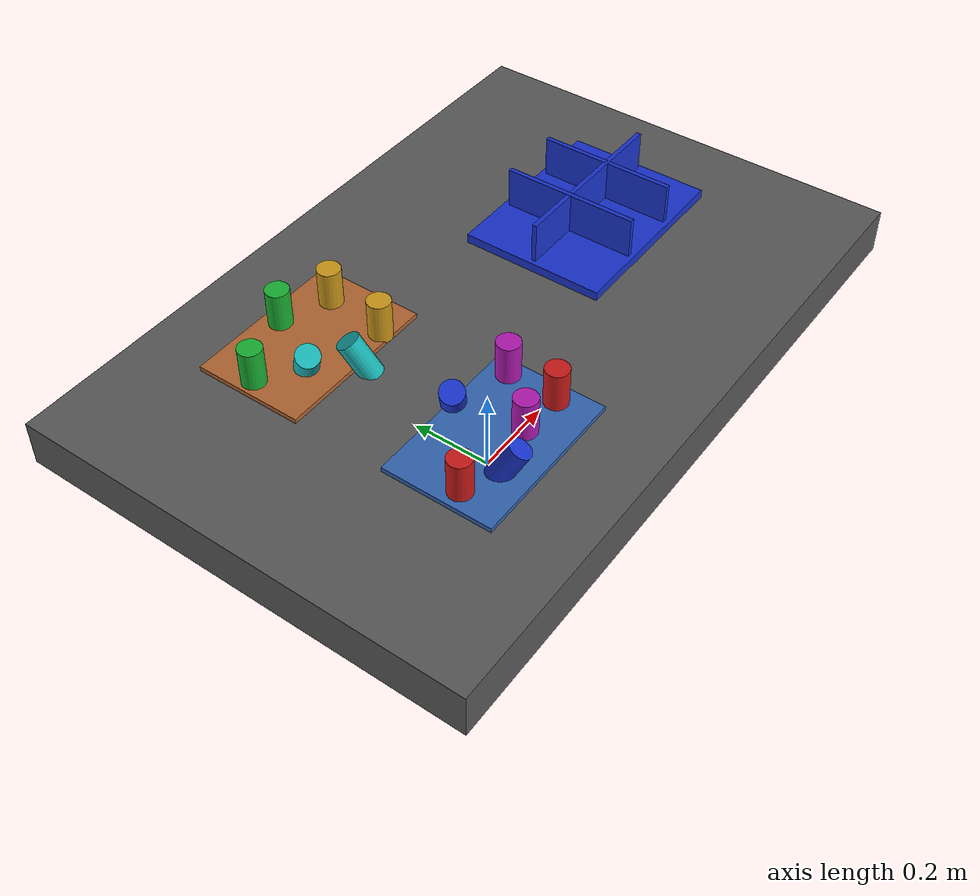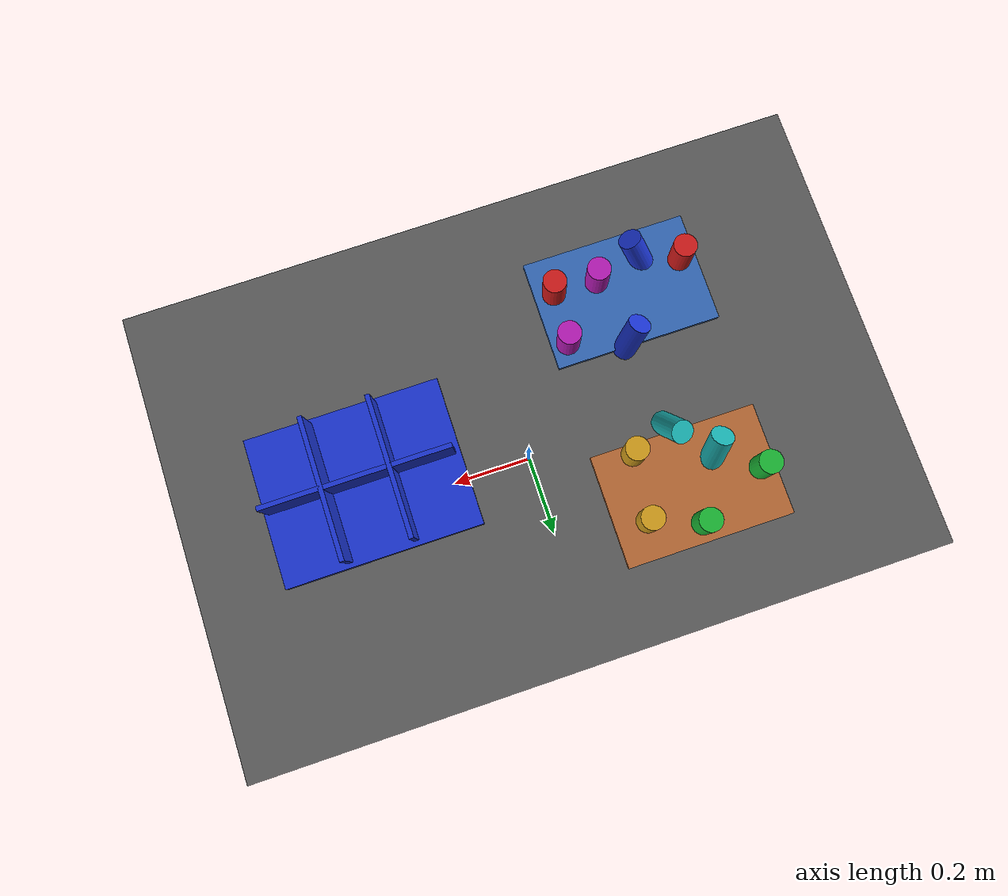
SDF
<?xml version="1.0" ?>
<sdf version="1.9">
  <!-- Standalone M1B scene.  The controller-backed Panda is spawned by the
       existing launch path; this file never alters the frozen M1A cube world. -->
  <world name="industrial_cylinder_v1">
    <physics name="bullet" type="bullet"><max_step_size>0.001</max_step_size><real_time_factor>1.0</real_time_factor></physics>
    <plugin name="gz::sim::systems::Physics" filename="gz-sim-physics-system"><engine><filename>gz-physics-bullet-featherstone-plugin</filename></engine></plugin>
    <plugin name="gz::sim::systems::UserCommands" filename="gz-sim-user-commands-system"/>
    <plugin name="gz::sim::systems::SceneBroadcaster" filename="gz-sim-scene-broadcaster-system"/>
    <plugin name="gz::sim::systems::Sensors" filename="gz-sim-sensors-system"><render_engine>ogre2</render_engine></plugin>
    <gravity>0 0 -9.81</gravity>
    <light type="directional" name="industrial_light"><pose>0 0 5 0 0 0</pose><direction>-0.3 0.2 -0.9</direction><diffuse>0.9 0.9 0.9 1</diffuse></light>
    <model name="industrial_work_table"><static>true</static><link name="link"><pose>0 0 0.4 0 0 0</pose><collision name="collision"><geometry><box><size>1.5 1.0 0.1</size></box></geometry></collision><visual name="visual"><geometry><box><size>1.5 1.0 0.1</size></box></geometry><material><diffuse>0.35 0.35 0.35 1</diffuse></material></visual></link></model>
    <model name="camera_fixture"><static>true</static><link name="camera_rgbd"><pose>-0.80 -0.80 1.40 0 0.77 0.93</pose><sensor name="front_rgbd" type="rgbd_camera"><always_on>1</always_on><update_rate>15</update_rate><topic>/xh/camera/rgbd</topic><camera><horizontal_fov>1.047</horizontal_fov><image><width>640</width><height>480</height><format>R8G8B8</format></image><clip><near>0.1</near><far>4.0</far></clip></camera></sensor></link></model>
    <model name="incoming_zone_a"><static>true</static><link name="link"><pose>-0.28 -0.22 0.455 0 0 0</pose><visual name="visual"><geometry><box><size>0.36 0.24 0.01</size></box></geometry><material><diffuse>0.2 0.4 0.7 1</diffuse></material></visual></link></model>
    <model name="incoming_zone_b"><static>true</static><link name="link"><pose>-0.28 0.22 0.455 0 0 0</pose><visual name="visual"><geometry><box><size>0.36 0.24 0.01</size></box></geometry><material><diffuse>0.7 0.4 0.2 1</diffuse></material></visual></link></model>
    <!-- M1B_RANDOM_PARTS_BEGIN -->
    <model name="cylinder_01"><pose>-0.4227 -0.2466 0.5000 0.0000 0.0000 2.6062</pose><link name="link"><inertial><mass>0.06</mass></inertial><collision name="collision"><geometry><cylinder><radius>0.025</radius><length>0.09</length></cylinder></geometry></collision><visual name="visual"><geometry><cylinder><radius>0.025</radius><length>0.09</length></cylinder></geometry><material><diffuse>0.800 0.100 0.100 1</diffuse><specular>0.15 0.15 0.15 1</specular></material></visual></link></model>
    <model name="cylinder_02"><pose>-0.4284 0.2300 0.5000 3.1416 0.0000 1.0177</pose><link name="link"><inertial><mass>0.06</mass></inertial><collision name="collision"><geometry><cylinder><radius>0.025</radius><length>0.09</length></cylinder></geometry></collision><visual name="visual"><geometry><cylinder><radius>0.025</radius><length>0.09</length></cylinder></geometry><material><diffuse>0.100 0.700 0.200 1</diffuse><specular>0.15 0.15 0.15 1</specular></material></visual></link></model>
    <model name="cylinder_03"><pose>-0.2636 -0.1119 0.4800 0.4500 -0.3000 -0.4229</pose><link name="link"><inertial><mass>0.06</mass></inertial><collision name="collision"><geometry><cylinder><radius>0.025</radius><length>0.09</length></cylinder></geometry></collision><visual name="visual"><geometry><cylinder><radius>0.025</radius><length>0.09</length></cylinder></geometry><material><diffuse>0.100 0.200 0.800 1</diffuse><specular>0.15 0.15 0.15 1</specular></material></visual></link></model>
    <model name="cylinder_04"><pose>-0.1863 0.1214 0.5000 0.0000 0.0000 2.5324</pose><link name="link"><inertial><mass>0.06</mass></inertial><collision name="collision"><geometry><cylinder><radius>0.025</radius><length>0.09</length></cylinder></geometry></collision><visual name="visual"><geometry><cylinder><radius>0.025</radius><length>0.09</length></cylinder></geometry><material><diffuse>0.800 0.600 0.100 1</diffuse><specular>0.15 0.15 0.15 1</specular></material></visual></link></model>
    <model name="cylinder_05"><pose>-0.1359 -0.1462 0.5000 3.1416 0.0000 -0.2750</pose><link name="link"><inertial><mass>0.06</mass></inertial><collision name="collision"><geometry><cylinder><radius>0.025</radius><length>0.09</length></cylinder></geometry></collision><visual name="visual"><geometry><cylinder><radius>0.025</radius><length>0.09</length></cylinder></geometry><material><diffuse>0.700 0.100 0.700 1</diffuse><specular>0.15 0.15 0.15 1</specular></material></visual></link></model>
    <model name="cylinder_06"><pose>-0.3489 0.1670 0.4800 0.4500 -0.3000 -0.0910</pose><link name="link"><inertial><mass>0.06</mass></inertial><collision name="collision"><geometry><cylinder><radius>0.025</radius><length>0.09</length></cylinder></geometry></collision><visual name="visual"><geometry><cylinder><radius>0.025</radius><length>0.09</length></cylinder></geometry><material><diffuse>0.100 0.700 0.700 1</diffuse><specular>0.15 0.15 0.15 1</specular></material></visual></link></model>
    <model name="cylinder_07"><pose>-0.1423 -0.2586 0.5000 0.0000 0.0000 -2.7505</pose><link name="link"><inertial><mass>0.06</mass></inertial><collision name="collision"><geometry><cylinder><radius>0.025</radius><length>0.09</length></cylinder></geometry></collision><visual name="visual"><geometry><cylinder><radius>0.025</radius><length>0.09</length></cylinder></geometry><material><diffuse>0.800 0.100 0.100 1</diffuse><specular>0.15 0.15 0.15 1</specular></material></visual></link></model>
    <model name="cylinder_08"><pose>-0.2755 0.3002 0.5000 3.1416 0.0000 -1.1091</pose><link name="link"><inertial><mass>0.06</mass></inertial><collision name="collision"><geometry><cylinder><radius>0.025</radius><length>0.09</length></cylinder></geometry></collision><visual name="visual"><geometry><cylinder><radius>0.025</radius><length>0.09</length></cylinder></geometry><material><diffuse>0.100 0.700 0.200 1</diffuse><specular>0.15 0.15 0.15 1</specular></material></visual></link></model>
    <model name="cylinder_09"><pose>-0.3373 -0.2857 0.4800 0.4500 -0.3000 1.1751</pose><link name="link"><inertial><mass>0.06</mass></inertial><collision name="collision"><geometry><cylinder><radius>0.025</radius><length>0.09</length></cylinder></geometry></collision><visual name="visual"><geometry><cylinder><radius>0.025</radius><length>0.09</length></cylinder></geometry><material><diffuse>0.100 0.200 0.800 1</diffuse><specular>0.15 0.15 0.15 1</specular></material></visual></link></model>
    <model name="cylinder_10"><pose>-0.1695 0.2606 0.5000 0.0000 0.0000 -1.1234</pose><link name="link"><inertial><mass>0.06</mass></inertial><collision name="collision"><geometry><cylinder><radius>0.025</radius><length>0.09</length></cylinder></geometry></collision><visual name="visual"><geometry><cylinder><radius>0.025</radius><length>0.09</length></cylinder></geometry><material><diffuse>0.800 0.600 0.100 1</diffuse><specular>0.15 0.15 0.15 1</specular></material></visual></link></model>
    <model name="cylinder_11"><pose>-0.2374 -0.2552 0.5000 3.1416 0.0000 -1.8161</pose><link name="link"><inertial><mass>0.06</mass></inertial><collision name="collision"><geometry><cylinder><radius>0.025</radius><length>0.09</length></cylinder></geometry></collision><visual name="visual"><geometry><cylinder><radius>0.025</radius><length>0.09</length></cylinder></geometry><material><diffuse>0.700 0.100 0.700 1</diffuse><specular>0.15 0.15 0.15 1</specular></material></visual></link></model>
    <model name="cylinder_12"><pose>-0.2784 0.0949 0.4800 0.4500 -0.3000 -2.1823</pose><link name="link"><inertial><mass>0.06</mass></inertial><collision name="collision"><geometry><cylinder><radius>0.025</radius><length>0.09</length></cylinder></geometry></collision><visual name="visual"><geometry><cylinder><radius>0.025</radius><length>0.09</length></cylinder></geometry><material><diffuse>0.100 0.700 0.700 1</diffuse><specular>0.15 0.15 0.15 1</specular></material></visual></link></model>
    <!-- M1B_RANDOM_PARTS_END -->
    <model name="blue_partition_bin"><static>true</static><pose>0.36 0 0.45 0 0 0</pose><link name="link"><collision name="floor"><pose>0 0 0.01 0 0 0</pose><geometry><box><size>0.42 0.32 0.02</size></box></geometry></collision><visual name="floor_visual"><pose>0 0 0.01 0 0 0</pose><geometry><box><size>0.42 0.32 0.02</size></box></geometry><material><diffuse>0.1 0.2 0.8 1</diffuse></material></visual><visual name="row_divider"><pose>0 0 0.06 0 0 0</pose><geometry><box><size>0.40 0.01 0.10</size></box></geometry><material><diffuse>0.1 0.2 0.8 1</diffuse></material></visual><visual name="col_divider_a"><pose>-0.07 0 0.06 0 0 0</pose><geometry><box><size>0.01 0.30 0.10</size></box></geometry><material><diffuse>0.1 0.2 0.8 1</diffuse></material></visual><visual name="col_divider_b"><pose>0.07 0 0.06 0 0 0</pose><geometry><box><size>0.01 0.30 0.10</size></box></geometry><material><diffuse>0.1 0.2 0.8 1</diffuse></material></visual></link></model>
    <!-- Reserved only: second table, bin transport corridor, stackable-bin
         collision volume, and second arm mounting namespace. -->
  </world>
</sdf>
